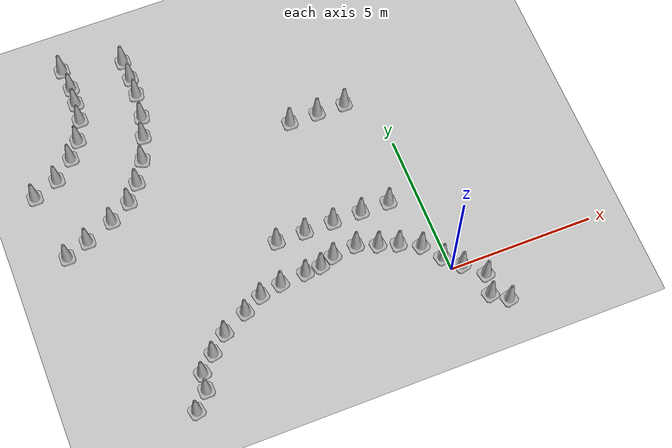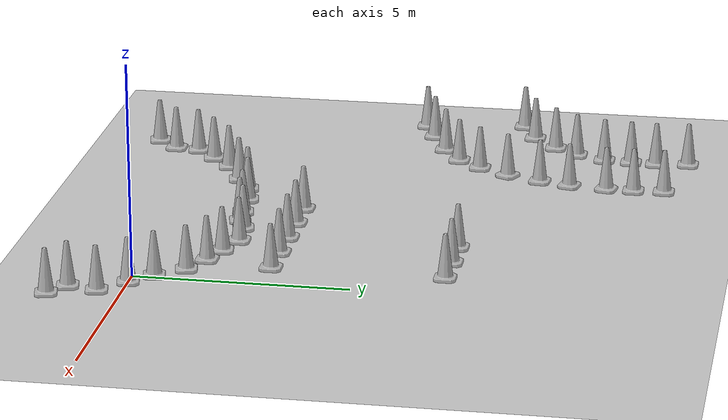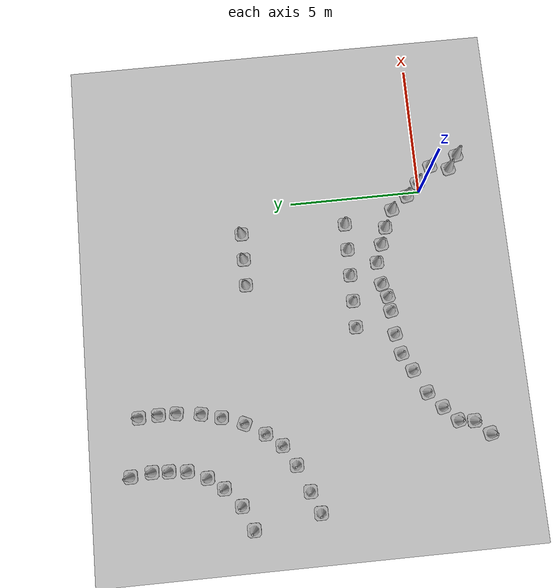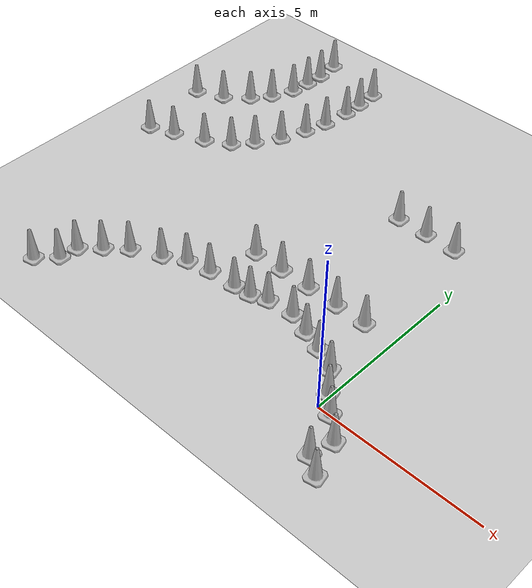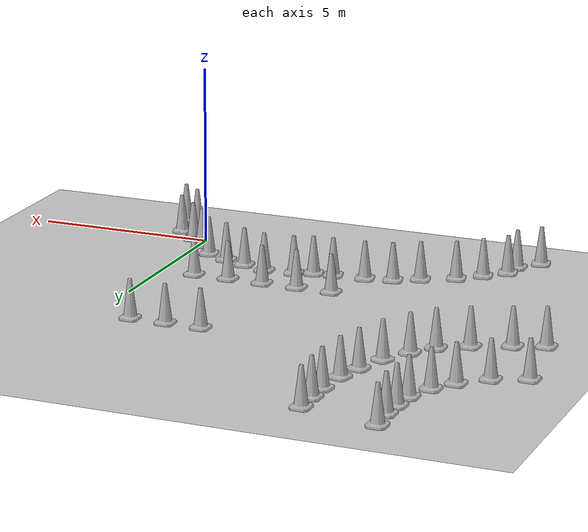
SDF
<sdf version="1.7">
 <world name="empty">
  <model name="ground_plane">
   <static>1</static>
   <link name="link">
    <collision name="collision">
     <geometry><plane><normal>0 0 1</normal><size>100 100</size></plane></geometry>
     <surface>
      <contact><collide_bitmask>65535</collide_bitmask></contact>
      <friction><ode><mu>100</mu><mu2>50</mu2></ode></friction>
     </surface>
    </collision>
    <visual name="visual">
     <cast_shadows>0</cast_shadows>
     <geometry><plane><normal>0 0 1</normal><size>100 100</size></plane></geometry>
     <material>
      <script><uri>file://media/materials/scripts/gazebo.material</uri><name>Gazebo/Grey</name></script>
     </material>
    </visual>
   </link>
  </model>
  <model name="Construction Cone">
   <link name="link">
    <collision name="collision">
     <geometry>
      <mesh><scale>10 10 10</scale><uri>model://construction_cone/meshes/construction_cone.dae</uri></mesh>
     </geometry>
    </collision>
    <visual name="visual">
     <geometry>
      <mesh><scale>10 10 10</scale><uri>model://construction_cone/meshes/construction_cone.dae</uri></mesh>
     </geometry>
    </visual>
    <inertial>
     <inertia><ixx>1</ixx><ixy>0</ixy><ixz>0</ixz><iyy>1</iyy><iyz>0</iyz><izz>1</izz></inertia>
     <mass>1</mass>
    </inertial>
   </link>
   <pose>-11.9728 7.44351 -0 0 1e-06 0</pose>
  </model>
  <model name="Construction Cone_clone">
   <link name="link">
    <collision name="collision">
     <geometry>
      <mesh><scale>10 10 10</scale><uri>model://construction_cone/meshes/construction_cone.dae</uri></mesh>
     </geometry>
    </collision>
    <visual name="visual">
     <geometry>
      <mesh><scale>10 10 10</scale><uri>model://construction_cone/meshes/construction_cone.dae</uri></mesh>
     </geometry>
    </visual>
    <inertial>
     <inertia><ixx>1</ixx><ixy>0</ixy><ixz>0</ixz><iyy>1</iyy><iyz>0</iyz><izz>1</izz></inertia>
     <mass>1</mass>
    </inertial>
   </link>
   <pose>-11.6171 4.97827 -3e-06 1e-06 -0 0</pose>
  </model>
  <model name="Construction Cone_clone_0">
   <link name="link">
    <collision name="collision">
     <geometry>
      <mesh><scale>10 10 10</scale><uri>model://construction_cone/meshes/construction_cone.dae</uri></mesh>
     </geometry>
    </collision>
    <visual name="visual">
     <geometry>
      <mesh><scale>10 10 10</scale><uri>model://construction_cone/meshes/construction_cone.dae</uri></mesh>
     </geometry>
    </visual>
    <inertial>
     <inertia><ixx>1</ixx><ixy>0</ixy><ixz>0</ixz><iyy>1</iyy><iyz>0</iyz><izz>1</izz></inertia>
     <mass>1</mass>
    </inertial>
   </link>
   <pose>-11.0935 7.81167 -1e-05 -1e-06 0 0</pose>
  </model>
  <model name="Construction Cone_clone_1">
   <link name="link">
    <collision name="collision">
     <geometry>
      <mesh><scale>10 10 10</scale><uri>model://construction_cone/meshes/construction_cone.dae</uri></mesh>
     </geometry>
    </collision>
    <visual name="visual">
     <geometry>
      <mesh><scale>10 10 10</scale><uri>model://construction_cone/meshes/construction_cone.dae</uri></mesh>
     </geometry>
    </visual>
    <inertial>
     <inertia><ixx>1</ixx><ixy>0</ixy><ixz>0</ixz><iyy>1</iyy><iyz>0</iyz><izz>1</izz></inertia>
     <mass>1</mass>
    </inertial>
   </link>
   <pose>-10.4151 8.40897 -0 0 -0 0</pose>
  </model>
  <model name="Construction Cone_clone_3">
   <link name="link">
    <collision name="collision">
     <geometry>
      <mesh><scale>10 10 10</scale><uri>model://construction_cone/meshes/construction_cone.dae</uri></mesh>
     </geometry>
    </collision>
    <visual name="visual">
     <geometry>
      <mesh><scale>10 10 10</scale><uri>model://construction_cone/meshes/construction_cone.dae</uri></mesh>
     </geometry>
    </visual>
    <inertial>
     <inertia><ixx>1</ixx><ixy>0</ixy><ixz>0</ixz><iyy>1</iyy><iyz>0</iyz><izz>1</izz></inertia>
     <mass>1</mass>
    </inertial>
   </link>
   <pose>-10.8232 5.28733 -0 0 -0 0</pose>
  </model>
  <model name="Construction Cone_clone_7">
   <link name="link">
    <collision name="collision">
     <geometry>
      <mesh><scale>10 10 10</scale><uri>model://construction_cone/meshes/construction_cone.dae</uri></mesh>
     </geometry>
    </collision>
    <visual name="visual">
     <geometry>
      <mesh><scale>10 10 10</scale><uri>model://construction_cone/meshes/construction_cone.dae</uri></mesh>
     </geometry>
    </visual>
    <inertial>
     <inertia><ixx>1</ixx><ixy>0</ixy><ixz>0</ixz><iyy>1</iyy><iyz>0</iyz><izz>1</izz></inertia>
     <mass>1</mass>
    </inertial>
   </link>
   <pose>-9.97878 8.9871 -0 0 -1e-06 0</pose>
  </model>
  <model name="Construction Cone_clone_8">
   <link name="link">
    <collision name="collision">
     <geometry>
      <mesh><scale>10 10 10</scale><uri>model://construction_cone/meshes/construction_cone.dae</uri></mesh>
     </geometry>
    </collision>
    <visual name="visual">
     <geometry>
      <mesh><scale>10 10 10</scale><uri>model://construction_cone/meshes/construction_cone.dae</uri></mesh>
     </geometry>
    </visual>
    <inertial>
     <inertia><ixx>1</ixx><ixy>0</ixy><ixz>0</ixz><iyy>1</iyy><iyz>0</iyz><izz>1</izz></inertia>
     <mass>1</mass>
    </inertial>
   </link>
   <pose>-9.67419 9.70779 -9e-06 -3e-06 -0 -0</pose>
  </model>
  <model name="Construction Cone_clone_9">
   <link name="link">
    <collision name="collision">
     <geometry>
      <mesh><scale>10 10 10</scale><uri>model://construction_cone/meshes/construction_cone.dae</uri></mesh>
     </geometry>
    </collision>
    <visual name="visual">
     <geometry>
      <mesh><scale>10 10 10</scale><uri>model://construction_cone/meshes/construction_cone.dae</uri></mesh>
     </geometry>
    </visual>
    <inertial>
     <inertia><ixx>1</ixx><ixy>0</ixy><ixz>0</ixz><iyy>1</iyy><iyz>0</iyz><izz>1</izz></inertia>
     <mass>1</mass>
    </inertial>
   </link>
   <pose>-9.61409 10.3771 -0 0 -1e-06 0</pose>
  </model>
  <model name="Construction Cone_clone_10">
   <link name="link">
    <collision name="collision">
     <geometry>
      <mesh><scale>10 10 10</scale><uri>model://construction_cone/meshes/construction_cone.dae</uri></mesh>
     </geometry>
    </collision>
    <visual name="visual">
     <geometry>
      <mesh><scale>10 10 10</scale><uri>model://construction_cone/meshes/construction_cone.dae</uri></mesh>
     </geometry>
    </visual>
    <inertial>
     <inertia><ixx>1</ixx><ixy>0</ixy><ixz>0</ixz><iyy>1</iyy><iyz>0</iyz><izz>1</izz></inertia>
     <mass>1</mass>
    </inertial>
   </link>
   <pose>-3 7 0 -0 -0 -0</pose>
  </model>
  <model name="Construction Cone_clone_11">
   <link name="link">
    <collision name="collision">
     <geometry>
      <mesh><scale>10 10 10</scale><uri>model://construction_cone/meshes/construction_cone.dae</uri></mesh>
     </geometry>
    </collision>
    <visual name="visual">
     <geometry>
      <mesh><scale>10 10 10</scale><uri>model://construction_cone/meshes/construction_cone.dae</uri></mesh>
     </geometry>
    </visual>
    <inertial>
     <inertia><ixx>1</ixx><ixy>0</ixy><ixz>0</ixz><iyy>1</iyy><iyz>0</iyz><izz>1</izz></inertia>
     <mass>1</mass>
    </inertial>
   </link>
   <pose>-3 3 -1e-05 -1e-06 0 0</pose>
  </model>
  <model name="Construction Cone_clone_12">
   <link name="link">
    <collision name="collision">
     <geometry>
      <mesh><scale>10 10 10</scale><uri>model://construction_cone/meshes/construction_cone.dae</uri></mesh>
     </geometry>
    </collision>
    <visual name="visual">
     <geometry>
      <mesh><scale>10 10 10</scale><uri>model://construction_cone/meshes/construction_cone.dae</uri></mesh>
     </geometry>
    </visual>
    <inertial>
     <inertia><ixx>1</ixx><ixy>0</ixy><ixz>0</ixz><iyy>1</iyy><iyz>0</iyz><izz>1</izz></inertia>
     <mass>1</mass>
    </inertial>
   </link>
   <pose>-2 3 -0 0 -0 0</pose>
  </model>
  <model name="Construction Cone_clone_13">
   <link name="link">
    <collision name="collision">
     <geometry>
      <mesh><scale>10 10 10</scale><uri>model://construction_cone/meshes/construction_cone.dae</uri></mesh>
     </geometry>
    </collision>
    <visual name="visual">
     <geometry>
      <mesh><scale>10 10 10</scale><uri>model://construction_cone/meshes/construction_cone.dae</uri></mesh>
     </geometry>
    </visual>
    <inertial>
     <inertia><ixx>1</ixx><ixy>0</ixy><ixz>0</ixz><iyy>1</iyy><iyz>0</iyz><izz>1</izz></inertia>
     <mass>1</mass>
    </inertial>
   </link>
   <pose>-2 7 -1e-05 -1e-06 0 0</pose>
  </model>
  <model name="Construction Cone_clone_14">
   <link name="link">
    <collision name="collision">
     <geometry>
      <mesh><scale>10 10 10</scale><uri>model://construction_cone/meshes/construction_cone.dae</uri></mesh>
     </geometry>
    </collision>
    <visual name="visual">
     <geometry>
      <mesh><scale>10 10 10</scale><uri>model://construction_cone/meshes/construction_cone.dae</uri></mesh>
     </geometry>
    </visual>
    <inertial>
     <inertia><ixx>1</ixx><ixy>0</ixy><ixz>0</ixz><iyy>1</iyy><iyz>0</iyz><izz>1</izz></inertia>
     <mass>1</mass>
    </inertial>
   </link>
   <pose>-1 7 0 -0 -0 -0</pose>
  </model>
  <model name="Construction Cone_clone_15">
   <link name="link">
    <collision name="collision">
     <geometry>
      <mesh><scale>10 10 10</scale><uri>model://construction_cone/meshes/construction_cone.dae</uri></mesh>
     </geometry>
    </collision>
    <visual name="visual">
     <geometry>
      <mesh><scale>10 10 10</scale><uri>model://construction_cone/meshes/construction_cone.dae</uri></mesh>
     </geometry>
    </visual>
    <inertial>
     <inertia><ixx>1</ixx><ixy>0</ixy><ixz>0</ixz><iyy>1</iyy><iyz>0</iyz><izz>1</izz></inertia>
     <mass>1</mass>
    </inertial>
   </link>
   <pose>-1 3 -6e-06 1e-06 -1e-06 0</pose>
  </model>
  <model name="Construction Cone_clone_20">
   <link name="link">
    <collision name="collision">
     <geometry>
      <mesh><scale>10 10 10</scale><uri>model://construction_cone/meshes/construction_cone.dae</uri></mesh>
     </geometry>
    </collision>
    <visual name="visual">
     <geometry>
      <mesh><scale>10 10 10</scale><uri>model://construction_cone/meshes/construction_cone.dae</uri></mesh>
     </geometry>
    </visual>
    <inertial>
     <inertia><ixx>1</ixx><ixy>0</ixy><ixz>0</ixz><iyy>1</iyy><iyz>0</iyz><izz>1</izz></inertia>
     <mass>1</mass>
    </inertial>
   </link>
   <pose>-2.61076 1.92981 -1e-05 -1e-06 0 0.029847</pose>
  </model>
  <model name="Construction Cone_clone_33">
   <link name="link">
    <collision name="collision">
     <geometry>
      <mesh><scale>10 10 10</scale><uri>model://construction_cone/meshes/construction_cone.dae</uri></mesh>
     </geometry>
    </collision>
    <visual name="visual">
     <geometry>
      <mesh><scale>10 10 10</scale><uri>model://construction_cone/meshes/construction_cone.dae</uri></mesh>
     </geometry>
    </visual>
    <inertial>
     <inertia><ixx>1</ixx><ixy>0</ixy><ixz>0</ixz><iyy>1</iyy><iyz>0</iyz><izz>1</izz></inertia>
     <mass>1</mass>
    </inertial>
   </link>
   <pose>-1.91574 1.68243 -8e-06 0 1e-06 0.152894</pose>
  </model>
  <model name="Construction Cone_clone_35">
   <link name="link">
    <collision name="collision">
     <geometry>
      <mesh><scale>10 10 10</scale><uri>model://construction_cone/meshes/construction_cone.dae</uri></mesh>
     </geometry>
    </collision>
    <visual name="visual">
     <geometry>
      <mesh><scale>10 10 10</scale><uri>model://construction_cone/meshes/construction_cone.dae</uri></mesh>
     </geometry>
    </visual>
    <inertial>
     <inertia><ixx>1</ixx><ixy>0</ixy><ixz>0</ixz><iyy>1</iyy><iyz>0</iyz><izz>1</izz></inertia>
     <mass>1</mass>
    </inertial>
   </link>
   <pose>-1.27313 1.45906 0 0 -0 0.000419</pose>
  </model>
  <model name="Construction Cone_clone_59">
   <link name="link">
    <collision name="collision">
     <geometry>
      <mesh><scale>10 10 10</scale><uri>model://construction_cone/meshes/construction_cone.dae</uri></mesh>
     </geometry>
    </collision>
    <visual name="visual">
     <geometry>
      <mesh><scale>10 10 10</scale><uri>model://construction_cone/meshes/construction_cone.dae</uri></mesh>
     </geometry>
    </visual>
    <inertial>
     <inertia><ixx>1</ixx><ixy>0</ixy><ixz>0</ixz><iyy>1</iyy><iyz>0</iyz><izz>1</izz></inertia>
     <mass>1</mass>
    </inertial>
   </link>
   <pose>-4.51183 1.61968 -0 -0 -1e-06 0.206225</pose>
  </model>
  <model name="Construction Cone_clone_59_clone">
   <link name="link">
    <collision name="collision">
     <geometry>
      <mesh><scale>10 10 10</scale><uri>model://construction_cone/meshes/construction_cone.dae</uri></mesh>
     </geometry>
    </collision>
    <visual name="visual">
     <geometry>
      <mesh><scale>10 10 10</scale><uri>model://construction_cone/meshes/construction_cone.dae</uri></mesh>
     </geometry>
    </visual>
    <inertial>
     <inertia><ixx>1</ixx><ixy>0</ixy><ixz>0</ixz><iyy>1</iyy><iyz>0</iyz><izz>1</izz></inertia>
     <mass>1</mass>
    </inertial>
   </link>
   <pose>-5.40428 1.55794 -9e-06 -3e-06 -0 0.206225</pose>
  </model>
  <model name="Construction Cone_clone_59_clone_0">
   <link name="link">
    <collision name="collision">
     <geometry>
      <mesh><scale>10 10 10</scale><uri>model://construction_cone/meshes/construction_cone.dae</uri></mesh>
     </geometry>
    </collision>
    <visual name="visual">
     <geometry>
      <mesh><scale>10 10 10</scale><uri>model://construction_cone/meshes/construction_cone.dae</uri></mesh>
     </geometry>
    </visual>
    <inertial>
     <inertia><ixx>1</ixx><ixy>0</ixy><ixz>0</ixz><iyy>1</iyy><iyz>0</iyz><izz>1</izz></inertia>
     <mass>1</mass>
    </inertial>
   </link>
   <pose>-0.599827 1.12459 -0 0 -0 0.206225</pose>
  </model>
  <model name="Construction Cone_clone_59_clone_1">
   <link name="link">
    <collision name="collision">
     <geometry>
      <mesh><scale>10 10 10</scale><uri>model://construction_cone/meshes/construction_cone.dae</uri></mesh>
     </geometry>
    </collision>
    <visual name="visual">
     <geometry>
      <mesh><scale>10 10 10</scale><uri>model://construction_cone/meshes/construction_cone.dae</uri></mesh>
     </geometry>
    </visual>
    <inertial>
     <inertia><ixx>1</ixx><ixy>0</ixy><ixz>0</ixz><iyy>1</iyy><iyz>0</iyz><izz>1</izz></inertia>
     <mass>1</mass>
    </inertial>
   </link>
   <pose>-0.106114 0.495019 -9e-06 -5e-06 -0 0.206225</pose>
  </model>
  <model name="Construction Cone_clone_30_clone">
   <link name="link">
    <collision name="collision">
     <geometry>
      <mesh><scale>10 10 10</scale><uri>model://construction_cone/meshes/construction_cone.dae</uri></mesh>
     </geometry>
    </collision>
    <visual name="visual">
     <geometry>
      <mesh><scale>10 10 10</scale><uri>model://construction_cone/meshes/construction_cone.dae</uri></mesh>
     </geometry>
    </visual>
    <inertial>
     <inertia><ixx>1</ixx><ixy>0</ixy><ixz>0</ixz><iyy>1</iyy><iyz>0</iyz><izz>1</izz></inertia>
     <mass>1</mass>
    </inertial>
   </link>
   <pose>-8.88633 -0.991657 -0 0 -1e-06 0.015434</pose>
  </model>
  <model name="Construction Cone_clone_59_clone_clone">
   <link name="link">
    <collision name="collision">
     <geometry>
      <mesh><scale>10 10 10</scale><uri>model://construction_cone/meshes/construction_cone.dae</uri></mesh>
     </geometry>
    </collision>
    <visual name="visual">
     <geometry>
      <mesh><scale>10 10 10</scale><uri>model://construction_cone/meshes/construction_cone.dae</uri></mesh>
     </geometry>
    </visual>
    <inertial>
     <inertia><ixx>1</ixx><ixy>0</ixy><ixz>0</ixz><iyy>1</iyy><iyz>0</iyz><izz>1</izz></inertia>
     <mass>1</mass>
    </inertial>
   </link>
   <pose>-6.1573 1.40512 -0 0 -0 0.206225</pose>
  </model>
  <model name="Construction Cone_clone_59_clone_clone_0">
   <link name="link">
    <collision name="collision">
     <geometry>
      <mesh><scale>10 10 10</scale><uri>model://construction_cone/meshes/construction_cone.dae</uri></mesh>
     </geometry>
    </collision>
    <visual name="visual">
     <geometry>
      <mesh><scale>10 10 10</scale><uri>model://construction_cone/meshes/construction_cone.dae</uri></mesh>
     </geometry>
    </visual>
    <inertial>
     <inertia><ixx>1</ixx><ixy>0</ixy><ixz>0</ixz><iyy>1</iyy><iyz>0</iyz><izz>1</izz></inertia>
     <mass>1</mass>
    </inertial>
   </link>
   <pose>-6.82166 1.04752 -0 -0 -1e-06 0.206225</pose>
  </model>
  <model name="Construction Cone_clone_59_clone_clone_1">
   <link name="link">
    <collision name="collision">
     <geometry>
      <mesh><scale>10 10 10</scale><uri>model://construction_cone/meshes/construction_cone.dae</uri></mesh>
     </geometry>
    </collision>
    <visual name="visual">
     <geometry>
      <mesh><scale>10 10 10</scale><uri>model://construction_cone/meshes/construction_cone.dae</uri></mesh>
     </geometry>
    </visual>
    <inertial>
     <inertia><ixx>1</ixx><ixy>0</ixy><ixz>0</ixz><iyy>1</iyy><iyz>0</iyz><izz>1</izz></inertia>
     <mass>1</mass>
    </inertial>
   </link>
   <pose>-7.68992 0.613223 -0 0 -0 0.206225</pose>
  </model>
  <model name="Construction Cone_clone_59_clone_clone_2">
   <link name="link">
    <collision name="collision">
     <geometry>
      <mesh><scale>10 10 10</scale><uri>model://construction_cone/meshes/construction_cone.dae</uri></mesh>
     </geometry>
    </collision>
    <visual name="visual">
     <geometry>
      <mesh><scale>10 10 10</scale><uri>model://construction_cone/meshes/construction_cone.dae</uri></mesh>
     </geometry>
    </visual>
    <inertial>
     <inertia><ixx>1</ixx><ixy>0</ixy><ixz>0</ixz><iyy>1</iyy><iyz>0</iyz><izz>1</izz></inertia>
     <mass>1</mass>
    </inertial>
   </link>
   <pose>-8.27759 0.102404 -5e-06 7e-06 4e-06 0.206225</pose>
  </model>
  <model name="Construction Cone_clone_59_clone_clone_3">
   <link name="link">
    <collision name="collision">
     <geometry>
      <mesh><scale>10 10 10</scale><uri>model://construction_cone/meshes/construction_cone.dae</uri></mesh>
     </geometry>
    </collision>
    <visual name="visual">
     <geometry>
      <mesh><scale>10 10 10</scale><uri>model://construction_cone/meshes/construction_cone.dae</uri></mesh>
     </geometry>
    </visual>
    <inertial>
     <inertia><ixx>1</ixx><ixy>0</ixy><ixz>0</ixz><iyy>1</iyy><iyz>0</iyz><izz>1</izz></inertia>
     <mass>1</mass>
    </inertial>
   </link>
   <pose>-8.81392 -0.408497 -0 -0 -1e-06 0.206225</pose>
  </model>
  <model name="Construction Cone_clone_59_clone_clone_4">
   <link name="link">
    <collision name="collision">
     <geometry>
      <mesh><scale>10 10 10</scale><uri>model://construction_cone/meshes/construction_cone.dae</uri></mesh>
     </geometry>
    </collision>
    <visual name="visual">
     <geometry>
      <mesh><scale>10 10 10</scale><uri>model://construction_cone/meshes/construction_cone.dae</uri></mesh>
     </geometry>
    </visual>
    <inertial>
     <inertia><ixx>1</ixx><ixy>0</ixy><ixz>0</ixz><iyy>1</iyy><iyz>0</iyz><izz>1</izz></inertia>
     <mass>1</mass>
    </inertial>
   </link>
   <pose>-9.40143 -1.53258 -9e-06 -3e-06 -0 0.206225</pose>
  </model>
  <model name="Construction Cone_clone_59_clone_clone_12">
   <link name="link">
    <collision name="collision">
     <geometry>
      <mesh><scale>10 10 10</scale><uri>model://construction_cone/meshes/construction_cone.dae</uri></mesh>
     </geometry>
    </collision>
    <visual name="visual">
     <geometry>
      <mesh><scale>10 10 10</scale><uri>model://construction_cone/meshes/construction_cone.dae</uri></mesh>
     </geometry>
    </visual>
    <inertial>
     <inertia><ixx>1</ixx><ixy>0</ixy><ixz>0</ixz><iyy>1</iyy><iyz>0</iyz><izz>1</izz></inertia>
     <mass>1</mass>
    </inertial>
   </link>
   <pose>1.34409 -1.63494 -0 0 -0 0.207821</pose>
  </model>
  <model name="Construction Cone_clone_59_clone_clone_13">
   <link name="link">
    <collision name="collision">
     <geometry>
      <mesh><scale>10 10 10</scale><uri>model://construction_cone/meshes/construction_cone.dae</uri></mesh>
     </geometry>
    </collision>
    <visual name="visual">
     <geometry>
      <mesh><scale>10 10 10</scale><uri>model://construction_cone/meshes/construction_cone.dae</uri></mesh>
     </geometry>
    </visual>
    <inertial>
     <inertia><ixx>1</ixx><ixy>0</ixy><ixz>0</ixz><iyy>1</iyy><iyz>0</iyz><izz>1</izz></inertia>
     <mass>1</mass>
    </inertial>
   </link>
   <pose>0.835369 -1.2692 -1e-05 0 -0 0.211317</pose>
  </model>
  <model name="Construction Cone_clone_59_clone_clone_15">
   <link name="link">
    <collision name="collision">
     <geometry>
      <mesh><scale>10 10 10</scale><uri>model://construction_cone/meshes/construction_cone.dae</uri></mesh>
     </geometry>
    </collision>
    <visual name="visual">
     <geometry>
      <mesh><scale>10 10 10</scale><uri>model://construction_cone/meshes/construction_cone.dae</uri></mesh>
     </geometry>
    </visual>
    <inertial>
     <inertia><ixx>1</ixx><ixy>0</ixy><ixz>0</ixz><iyy>1</iyy><iyz>0</iyz><izz>1</izz></inertia>
     <mass>1</mass>
    </inertial>
   </link>
   <pose>0.383157 0.008766 -9e-06 0 -0 0.206225</pose>
  </model>
  <model name="Construction Cone_clone_59_clone_clone_16">
   <link name="link">
    <collision name="collision">
     <geometry>
      <mesh><scale>10 10 10</scale><uri>model://construction_cone/meshes/construction_cone.dae</uri></mesh>
     </geometry>
    </collision>
    <visual name="visual">
     <geometry>
      <mesh><scale>10 10 10</scale><uri>model://construction_cone/meshes/construction_cone.dae</uri></mesh>
     </geometry>
    </visual>
    <inertial>
     <inertia><ixx>1</ixx><ixy>0</ixy><ixz>0</ixz><iyy>1</iyy><iyz>0</iyz><izz>1</izz></inertia>
     <mass>1</mass>
    </inertial>
   </link>
   <pose>0.994217 -0.564096 -0 0 -0 0.206225</pose>
  </model>
  <model name="Construction Cone_clone_59_clone_clone_14">
   <link name="link">
    <collision name="collision">
     <geometry>
      <mesh><scale>10 10 10</scale><uri>model://construction_cone/meshes/construction_cone.dae</uri></mesh>
     </geometry>
    </collision>
    <visual name="visual">
     <geometry>
      <mesh><scale>10 10 10</scale><uri>model://construction_cone/meshes/construction_cone.dae</uri></mesh>
     </geometry>
    </visual>
    <inertial>
     <inertia><ixx>1</ixx><ixy>0</ixy><ixz>0</ixz><iyy>1</iyy><iyz>0</iyz><izz>1</izz></inertia>
     <mass>1</mass>
    </inertial>
   </link>
   <pose>-3.45128 1.84926 -1e-05 -1e-06 -0 0.23894</pose>
  </model>
  <model name="Construction Cone_clone_59_clone_clone_17">
   <link name="link">
    <collision name="collision">
     <geometry>
      <mesh><scale>10 10 10</scale><uri>model://construction_cone/meshes/construction_cone.dae</uri></mesh>
     </geometry>
    </collision>
    <visual name="visual">
     <geometry>
      <mesh><scale>10 10 10</scale><uri>model://construction_cone/meshes/construction_cone.dae</uri></mesh>
     </geometry>
    </visual>
    <inertial>
     <inertia><ixx>1</ixx><ixy>0</ixy><ixz>0</ixz><iyy>1</iyy><iyz>0</iyz><izz>1</izz></inertia>
     <mass>1</mass>
    </inertial>
   </link>
   <pose>-3.95404 1.66832 -0 0 -0 0.241567</pose>
  </model>
  <model name="Construction Cone_clone_3_clone">
   <link name="link">
    <collision name="collision">
     <geometry>
      <mesh><scale>10 10 10</scale><uri>model://construction_cone/meshes/construction_cone.dae</uri></mesh>
     </geometry>
    </collision>
    <visual name="visual">
     <geometry>
      <mesh><scale>10 10 10</scale><uri>model://construction_cone/meshes/construction_cone.dae</uri></mesh>
     </geometry>
    </visual>
    <inertial>
     <inertia><ixx>1</ixx><ixy>0</ixy><ixz>0</ixz><iyy>1</iyy><iyz>0</iyz><izz>1</izz></inertia>
     <mass>1</mass>
    </inertial>
   </link>
   <pose>-9.84377 5.69948 -0 0 -0 0</pose>
  </model>
  <model name="Construction Cone_clone_3_clone_clone_0">
   <link name="link">
    <collision name="collision">
     <geometry>
      <mesh><scale>10 10 10</scale><uri>model://construction_cone/meshes/construction_cone.dae</uri></mesh>
     </geometry>
    </collision>
    <visual name="visual">
     <geometry>
      <mesh><scale>10 10 10</scale><uri>model://construction_cone/meshes/construction_cone.dae</uri></mesh>
     </geometry>
    </visual>
    <inertial>
     <inertia><ixx>1</ixx><ixy>0</ixy><ixz>0</ixz><iyy>1</iyy><iyz>0</iyz><izz>1</izz></inertia>
     <mass>1</mass>
    </inertial>
   </link>
   <pose>-5 3 -0 0 -1e-06 0</pose>
  </model>
  <model name="Construction Cone_clone_3_clone_clone">
   <link name="link">
    <collision name="collision">
     <geometry>
      <mesh><scale>10 10 10</scale><uri>model://construction_cone/meshes/construction_cone.dae</uri></mesh>
     </geometry>
    </collision>
    <visual name="visual">
     <geometry>
      <mesh><scale>10 10 10</scale><uri>model://construction_cone/meshes/construction_cone.dae</uri></mesh>
     </geometry>
    </visual>
    <inertial>
     <inertia><ixx>1</ixx><ixy>0</ixy><ixz>0</ixz><iyy>1</iyy><iyz>0</iyz><izz>1</izz></inertia>
     <mass>1</mass>
    </inertial>
   </link>
   <pose>-9.09105 6.15293 -9e-06 0 -0 0</pose>
  </model>
  <model name="Construction Cone_clone_3_clone_clone_1">
   <link name="link">
    <collision name="collision">
     <geometry>
      <mesh><scale>10 10 10</scale><uri>model://construction_cone/meshes/construction_cone.dae</uri></mesh>
     </geometry>
    </collision>
    <visual name="visual">
     <geometry>
      <mesh><scale>10 10 10</scale><uri>model://construction_cone/meshes/construction_cone.dae</uri></mesh>
     </geometry>
    </visual>
    <inertial>
     <inertia><ixx>1</ixx><ixy>0</ixy><ixz>0</ixz><iyy>1</iyy><iyz>0</iyz><izz>1</izz></inertia>
     <mass>1</mass>
    </inertial>
   </link>
   <pose>-4 3 -0 0 -0 0</pose>
  </model>
  <model name="Construction Cone_clone_3_clone_clone_clone">
   <link name="link">
    <collision name="collision">
     <geometry>
      <mesh><scale>10 10 10</scale><uri>model://construction_cone/meshes/construction_cone.dae</uri></mesh>
     </geometry>
    </collision>
    <visual name="visual">
     <geometry>
      <mesh><scale>10 10 10</scale><uri>model://construction_cone/meshes/construction_cone.dae</uri></mesh>
     </geometry>
    </visual>
    <inertial>
     <inertia><ixx>1</ixx><ixy>0</ixy><ixz>0</ixz><iyy>1</iyy><iyz>0</iyz><izz>1</izz></inertia>
     <mass>1</mass>
    </inertial>
   </link>
   <pose>-8.61348 6.73458 -0 0 1e-06 0</pose>
  </model>
  <model name="Construction Cone_clone_3_clone_clone_clone_0">
   <link name="link">
    <collision name="collision">
     <geometry>
      <mesh><scale>10 10 10</scale><uri>model://construction_cone/meshes/construction_cone.dae</uri></mesh>
     </geometry>
    </collision>
    <visual name="visual">
     <geometry>
      <mesh><scale>10 10 10</scale><uri>model://construction_cone/meshes/construction_cone.dae</uri></mesh>
     </geometry>
    </visual>
    <inertial>
     <inertia><ixx>1</ixx><ixy>0</ixy><ixz>0</ixz><iyy>1</iyy><iyz>0</iyz><izz>1</izz></inertia>
     <mass>1</mass>
    </inertial>
   </link>
   <pose>-8.16721 7.48311 -0 0 0 -0.428023</pose>
  </model>
  <model name="Construction Cone_clone_3_clone_clone_clone_1">
   <link name="link">
    <collision name="collision">
     <geometry>
      <mesh><scale>10 10 10</scale><uri>model://construction_cone/meshes/construction_cone.dae</uri></mesh>
     </geometry>
    </collision>
    <visual name="visual">
     <geometry>
      <mesh><scale>10 10 10</scale><uri>model://construction_cone/meshes/construction_cone.dae</uri></mesh>
     </geometry>
    </visual>
    <inertial>
     <inertia><ixx>1</ixx><ixy>0</ixy><ixz>0</ixz><iyy>1</iyy><iyz>0</iyz><izz>1</izz></inertia>
     <mass>1</mass>
    </inertial>
   </link>
   <pose>-7.8586 8.31064 -0 0 -1e-06 -0.087873</pose>
  </model>
  <model name="Construction Cone_clone_3_clone_clone_clone_2">
   <link name="link">
    <collision name="collision">
     <geometry>
      <mesh><scale>10 10 10</scale><uri>model://construction_cone/meshes/construction_cone.dae</uri></mesh>
     </geometry>
    </collision>
    <visual name="visual">
     <geometry>
      <mesh><scale>10 10 10</scale><uri>model://construction_cone/meshes/construction_cone.dae</uri></mesh>
     </geometry>
    </visual>
    <inertial>
     <inertia><ixx>1</ixx><ixy>0</ixy><ixz>0</ixz><iyy>1</iyy><iyz>0</iyz><izz>1</izz></inertia>
     <mass>1</mass>
    </inertial>
   </link>
   <pose>-7.65909 9.0575 0 -1e-06 0 -0.197975</pose>
  </model>
  <model name="Construction Cone_clone_3_clone_clone_clone_3">
   <link name="link">
    <collision name="collision">
     <geometry>
      <mesh><scale>10 10 10</scale><uri>model://construction_cone/meshes/construction_cone.dae</uri></mesh>
     </geometry>
    </collision>
    <visual name="visual">
     <geometry>
      <mesh><scale>10 10 10</scale><uri>model://construction_cone/meshes/construction_cone.dae</uri></mesh>
     </geometry>
    </visual>
    <inertial>
     <inertia><ixx>1</ixx><ixy>0</ixy><ixz>0</ixz><iyy>1</iyy><iyz>0</iyz><izz>1</izz></inertia>
     <mass>1</mass>
    </inertial>
   </link>
   <pose>-7.55149 9.96399 -0 0 -1e-06 -0.185738</pose>
  </model>
  <model name="Construction Cone_clone_7_clone">
   <link name="link">
    <collision name="collision">
     <geometry>
      <mesh><scale>10 10 10</scale><uri>model://construction_cone/meshes/construction_cone.dae</uri></mesh>
     </geometry>
    </collision>
    <visual name="visual">
     <geometry>
      <mesh><scale>10 10 10</scale><uri>model://construction_cone/meshes/construction_cone.dae</uri></mesh>
     </geometry>
    </visual>
    <inertial>
     <inertia><ixx>1</ixx><ixy>0</ixy><ixz>0</ixz><iyy>1</iyy><iyz>0</iyz><izz>1</izz></inertia>
     <mass>1</mass>
    </inertial>
   </link>
   <pose>-9.58068 10.9968 -1e-05 -1e-06 0 0</pose>
  </model>
  <model name="Construction Cone_clone_7_clone_clone">
   <link name="link">
    <collision name="collision">
     <geometry>
      <mesh><scale>10 10 10</scale><uri>model://construction_cone/meshes/construction_cone.dae</uri></mesh>
     </geometry>
    </collision>
    <visual name="visual">
     <geometry>
      <mesh><scale>10 10 10</scale><uri>model://construction_cone/meshes/construction_cone.dae</uri></mesh>
     </geometry>
    </visual>
    <inertial>
     <inertia><ixx>1</ixx><ixy>0</ixy><ixz>0</ixz><iyy>1</iyy><iyz>0</iyz><izz>1</izz></inertia>
     <mass>1</mass>
    </inertial>
   </link>
   <pose>-7.5447 10.629 -0 0 -1e-06 0</pose>
  </model>
  <model name="Construction Cone_clone_7_clone_clone_0">
   <link name="link">
    <collision name="collision">
     <geometry>
      <mesh><scale>10 10 10</scale><uri>model://construction_cone/meshes/construction_cone.dae</uri></mesh>
     </geometry>
    </collision>
    <visual name="visual">
     <geometry>
      <mesh><scale>10 10 10</scale><uri>model://construction_cone/meshes/construction_cone.dae</uri></mesh>
     </geometry>
    </visual>
    <inertial>
     <inertia><ixx>1</ixx><ixy>0</ixy><ixz>0</ixz><iyy>1</iyy><iyz>0</iyz><izz>1</izz></inertia>
     <mass>1</mass>
    </inertial>
   </link>
   <pose>-7.5758 11.3623 -0 0 -1e-06 0</pose>
  </model>
  <model name="Construction Cone_clone_7_clone_clone_1">
   <link name="link">
    <collision name="collision">
     <geometry>
      <mesh><scale>10 10 10</scale><uri>model://construction_cone/meshes/construction_cone.dae</uri></mesh>
     </geometry>
    </collision>
    <visual name="visual">
     <geometry>
      <mesh><scale>10 10 10</scale><uri>model://construction_cone/meshes/construction_cone.dae</uri></mesh>
     </geometry>
    </visual>
    <inertial>
     <inertia><ixx>1</ixx><ixy>0</ixy><ixz>0</ixz><iyy>1</iyy><iyz>0</iyz><izz>1</izz></inertia>
     <mass>1</mass>
    </inertial>
   </link>
   <pose>-9.66681 11.7837 -0 0 -1e-06 0</pose>
  </model>
 </world>
</sdf>
